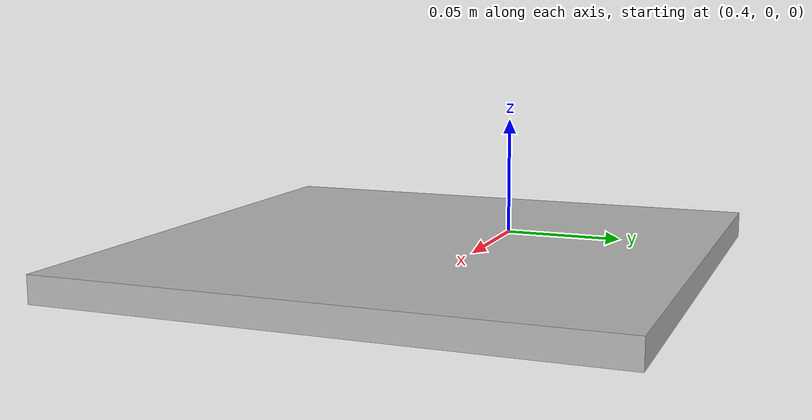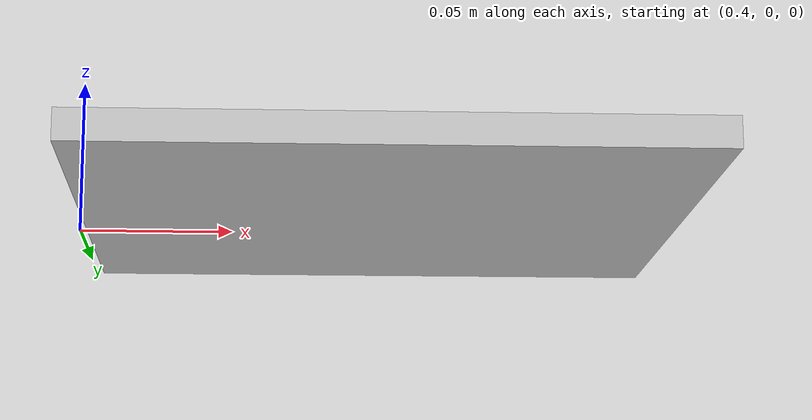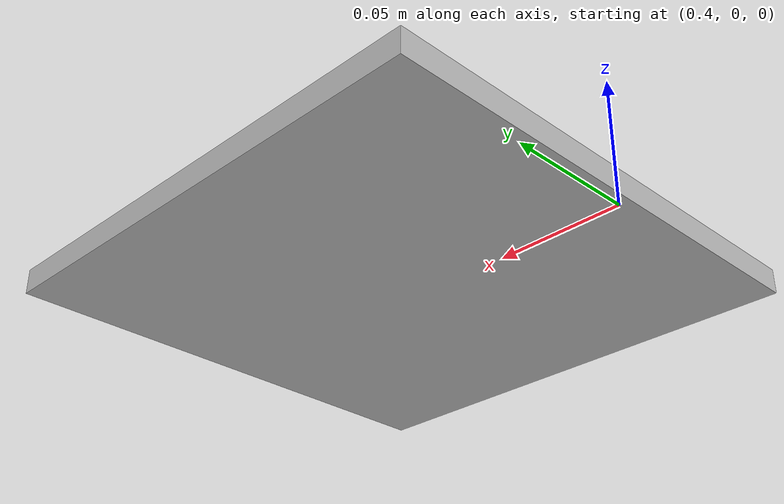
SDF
<?xml version="1.0" ?>
<sdf version="1.6">
  <model name="aruco_marker">
    <pose>0.5 0 0.01 0 0 0</pose> <!-- Position the marker slightly above the ground -->
    <link name="aruco_link">
      <!-- Collision element -->
      <collision name="aruco_collision">
        <geometry>
          <box>
            <size>0.2 0.2 0.01</size> <!-- Size of the ArUco marker -->
          </box>
        </geometry>
      </collision>
      <!-- Visual element -->
      <visual name="aruco_visual">
        <geometry>
          <box>
            <size>0.2 0.2 0.01</size> <!-- Visual matches collision size -->
          </box>
        </geometry>
        <material>
          <script>
            <!-- Correct the URI to point to a valid texture path -->
            <uri>model:///home/bravelord/abb_arm_ws/marker_0001.png</uri>
          </script>
        </material>
      </visual>
    </link>
    <static>true</static> <!-- Make the marker static to avoid physics issues -->
  </model>
</sdf>
